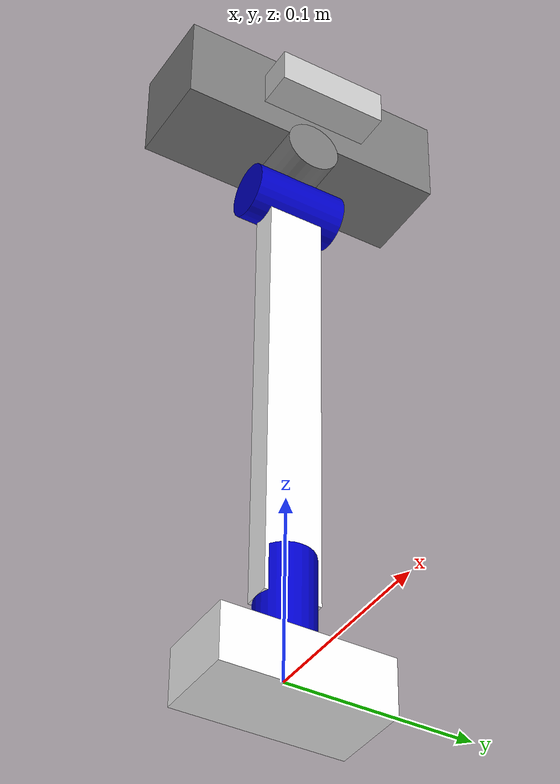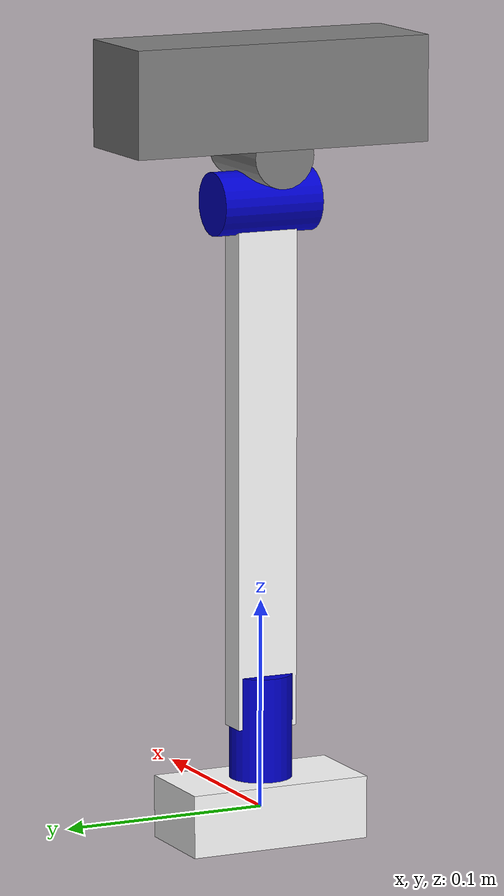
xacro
<?xml version="1.0"?>

<robot xmlns:xacro="http://www.ros.org/wiki/xacro" name="man_bot_patrolling">

  <xacro:arg name="use_nominal_extrinsics" default="false"/>
  <xacro:arg name="add_plug" default="false" />
  <xacro:arg name="use_mesh" default="true" />

  <xacro:include filename="$(find exprob_robot_patrolling)/urdf/robot_patrolling_explorer.gazebo" />

  <xacro:macro name="cylinder_inertia" params="mass r l">
    <inertia ixx="${mass*(3*r*r+l*l)/12}" ixy = "0" ixz = "0"
                iyy="${mass*(3*r*r+l*l)/12}" iyz = "0" izz="${mass*(r*r)/2}" />
  </xacro:macro>

  <material name="light_grey">
    <color rgba="0.5 0.5 0.5 1"/>
  </material>
  <material name="dark_grey">
    <color rgba="0.8 0.8 0.8 1"/>
  </material>
  <material name="blue">
    <color rgba="0 0 0.8 1"/>
  </material>
  <material name="white">
    <color rgba="1 1 1 1"/>
  </material>

  <!-- Camera -->
  <link name="camera_link">
    <visual>
      <origin xyz="0 0 0" rpy="0 0 0"/>
      <geometry>
        <box size="0.02 0.06 0.02"/>
      </geometry>
      <material name="dark_grey"/>
    </visual>

    <inertial>
      <mass value="0.05"/>
      <origin rpy="0 0 0" xyz="0 0 0"/>
      <inertia ixx="0.0015416666667" ixy="0" ixz="0" iyy="0.0106208333333" iyz="0" izz="0.0106208333333"/>
    </inertial>
  </link>

  <link name="rbot_base">
    <visual>
      <geometry>
        <box size="0.045 0.09 0.03"/>
      </geometry>
      <origin rpy="0 0 0" xyz="0 0 0"/>
       <material name="white"/>
    </visual>

    <inertial>
      <mass value="0.1"/>
      <origin rpy="0 0 0" xyz="0 0 0"/>
      <inertia ixx="0.0015416666667" ixy="0" ixz="0" iyy="0.0106208333333" iyz="0" izz="0.0106208333333"/>
    </inertial>
    <!-- body -->
    <collision name="collision_rbot_base">
      <geometry>
        <box size="0.045 0.09 0.03"/>
      </geometry>
    </collision>
  </link>

  <link name="servo_bottom">
    <visual>
      <geometry>
        <cylinder length="0.05" radius="0.015"/>
      </geometry>
      <origin rpy="0 0 0" xyz="0 0 0"/>
      <material name="blue"/>
    </visual>

    <inertial>
      <origin xyz="0 0 0" rpy="0 0 0" />
      <mass value="0.6" />
      <xacro:cylinder_inertia mass="0.6" r="0.015" l="0.05" />
    </inertial>
    <!-- body -->
    <collision name="collision_servo_bottom">
      <geometry>
        <cylinder length="0.05" radius="0.015"/>
      </geometry>
    </collision>
  </link>

  <link name="U_Link01">
    <visual>
      <geometry>
        <box size="0.015 0.03 0.25"/>
      </geometry>
      <origin rpy="0 0 0" xyz="0 0 0"/>
      <material name="white"/>
    </visual>

    <inertial>
      <mass value="0.1"/>
      <origin rpy="0 0 0" xyz="0 0 0"/>
      <inertia ixx="0.0015416666667" ixy="0" ixz="0" iyy="0.0106208333333" iyz="0" izz="0.0106208333333"/>
    </inertial>
    <!-- body -->
    <collision name="collision_U_link01">
      <geometry>
        <box size="0.015 0.03 0.25"/>
      </geometry>
    </collision>
  </link>

  <link name="U_Link02">
    <visual>
      <geometry>
        <box size="0.015 0.03 0.25"/>
      </geometry>
      <origin rpy="0 0 0" xyz="0 0 -0.125"/>
      <material name="white"/>
    </visual>

    <inertial>
      <mass value="0.1"/>
      <origin rpy="0 0 0" xyz="0 0 0"/>
      <inertia ixx="0.0015416666667" ixy="0" ixz="0" iyy="0.0106208333333" iyz="0" izz="0.0106208333333"/>
    </inertial>
    <!-- body -->
    <collision name="collision_U_link02">
      <geometry>
        <box size="0.015 0.03 -0.125"/>
      </geometry>
    </collision>
  </link>

  <joint name="U_link_extension" type="prismatic">
    <parent link="U_Link01"/>
    <child link="U_Link02"/>
    <axis xyz="0 0 1"/>
    <limit effort="1000.0" lower="0.0" upper="0.45" velocity="0.5"/>
    <origin rpy="0 0 0" xyz="0 0 0.125"/>
  </joint>

  <link name="servo_mid">
    <visual>
      <geometry>
        <cylinder length="0.05" radius="0.015"/>
      </geometry>
      <origin rpy="1.57 0 0" xyz="0 0 0"/>
      <material name="blue"/>
    </visual>

    <inertial>
      <origin xyz="0 0 0" rpy="0 0 0" />
      <mass value="0.6" />
      <xacro:cylinder_inertia mass="0.6" r="0.015" l="0.05" />
    </inertial>
    <!-- body -->
    <collision name="collision_servo_mid">
      <geometry>
        <cylinder length="0.05" radius="0.015"/>
      </geometry>
    </collision>
  </link>

  <link name="head_base">
    <visual>
      <geometry>
        <cylinder length="0.05" radius="0.015"/>
      </geometry>
      <origin rpy="0 0 0" xyz="0 0 0"/>
      <material name="light_grey"/>
    </visual>

    <inertial>
      <origin xyz="0 0 0" rpy="0 0 0" />
      <mass value="0.1" />
      <xacro:cylinder_inertia mass="0.6" r="0.015" l="0.05" />
    </inertial>
    <!-- body -->
    <collision name="collision_head_base">
      <geometry>
        <cylinder length="0.05" radius="0.015"/>
      </geometry>
    </collision>
  </link>

  <link name="up_mount">
    <visual>
      <geometry>
        <box size="0.05 0.148 0.05"/>
      </geometry>
      <origin rpy="0 0 0" xyz="0 0 0"/>
      <material name="light_grey"/>
    </visual>

    <inertial>
      <mass value="0.08"/>
      <origin rpy="0 0 0" xyz="0 0 0"/>
      <inertia ixx="0.0015416666667" ixy="0" ixz="0" iyy="0.0106208333333" iyz="0" izz="0.0106208333333"/>
    </inertial>
    <!-- body -->
    <collision name="collision_up_mount">
      <geometry>
        <box size="0.05 0.148 0.05"/>
      </geometry>
    </collision>
  </link>

  <joint name="base_to_Servo_B" type="fixed">
    <parent link="rbot_base"/>
    <child link="servo_bottom"/>
    <origin xyz="0 0 0.04"/>
  </joint>

  <joint name="joint_arm_01" type="revolute">
    <parent link="servo_bottom"/>
    <child link="U_Link01"/>
    <axis xyz="0 0 1"/>
    <limit effort="1000.0" lower="-3.14" upper="3.14" velocity="0.5"/>
    <origin xyz="0 0 0.125"/>
  </joint>

  <joint name="joint_arm_02" type="revolute">
    <parent link="U_Link02"/>
    <child link="servo_mid"/>
    <axis xyz="0 1 0"/>
    <limit effort="1000.0" lower="-1.57" upper="1.57" velocity="0.5"/>
    <origin xyz="0 0 0" rpy="0 0 0"/>
  </joint>

  <joint name="servo_mid_to_head_base" type="fixed">
    <parent link="servo_mid"/>
    <child link="head_base"/>
    <origin xyz="0 0 0.0237" rpy="0 1.57 0"/>
  </joint>

  <joint name="head_base_camera" type="fixed">
    <parent link="head_base"/>
    <child link="up_mount"/>
    <origin xyz="-0.028 0 0" rpy="0 -1.57 0"/>
  </joint>

  <joint name="mount_to_camera" type="fixed">
    <parent link="up_mount"/>
    <child link="camera_link"/>
    <origin xyz="0.035 0 0" rpy="0 0 0"/>
  </joint>

  <transmission name="joint_arm_01_trans">
	<type>transmission_interface/SimpleTransmission</type>
	<joint name="joint_arm_01">
		<hardwareInterface>hardware_interface/EffortJointInterface</hardwareInterface>
	</joint>
	<actuator name="motor1">
		<hardwareInterface>hardware_interface/EffortJointInterface</hardwareInterface>
		<mechanicalInterface>1</mechanicalInterface>
	</actuator>
</transmission>

<transmission name="joint_arm_02_trans">
	<type>transmission_interface/SimpleTransmission</type>
	<joint name="joint_arm_02">
		<hardwareInterface>hardware_interface/EffortJointInterface</hardwareInterface>
	</joint>
	<actuator name="motor2">
		<hardwareInterface>hardware_interface/EffortJointInterface</hardwareInterface>
		<mechanicalInterface>1</mechanicalInterface>
	</actuator>
</transmission>

<transmission name="joint_link_extension_trans">
	<type>transmission_interface/SimpleTransmission</type>
	<joint name="U_link_extension">
		<hardwareInterface>hardware_interface/EffortJointInterface</hardwareInterface>
	</joint>
	<actuator name="motor3">
		<hardwareInterface>hardware_interface/EffortJointInterface</hardwareInterface>
		<mechanicalInterface>1</mechanicalInterface>
	</actuator>
</transmission>

</robot>
